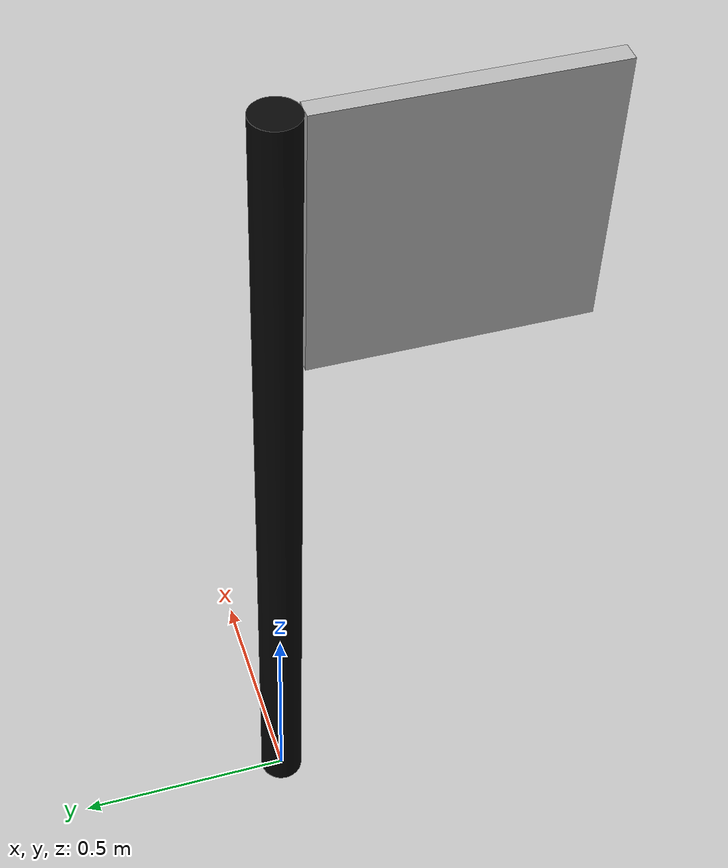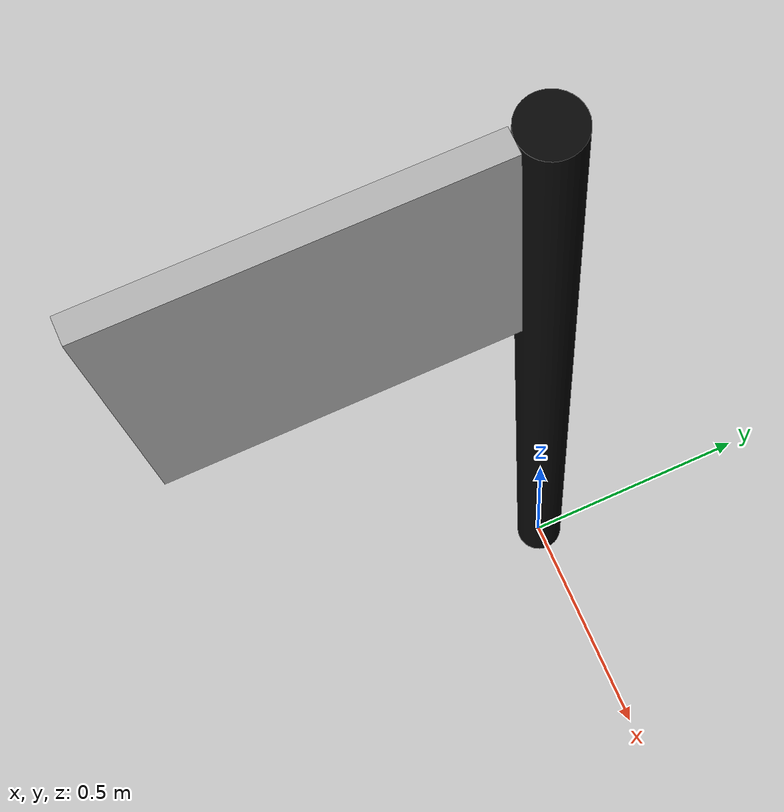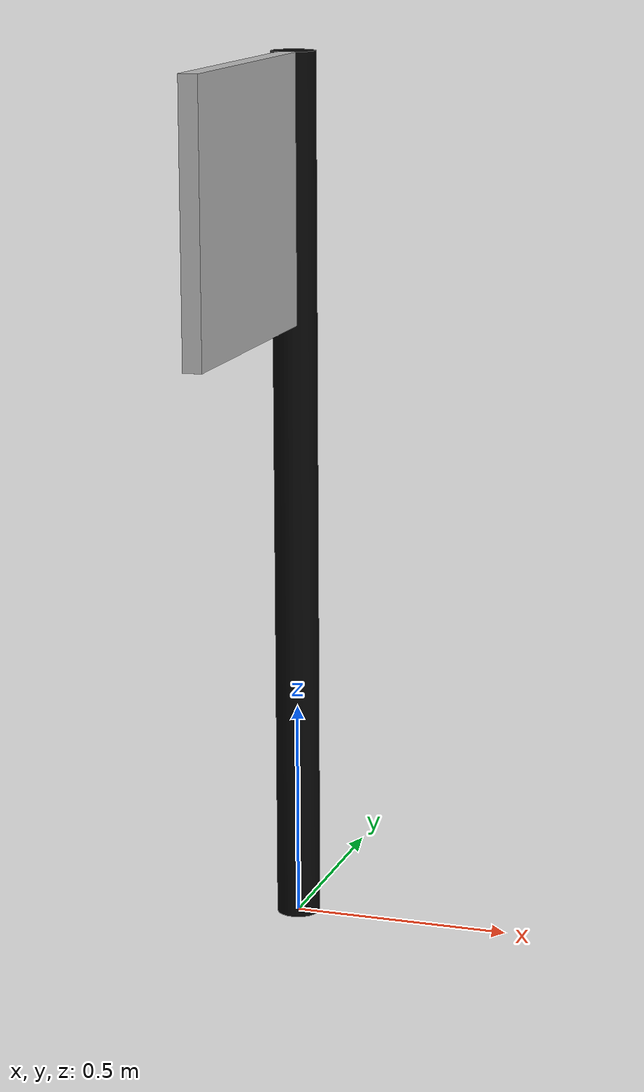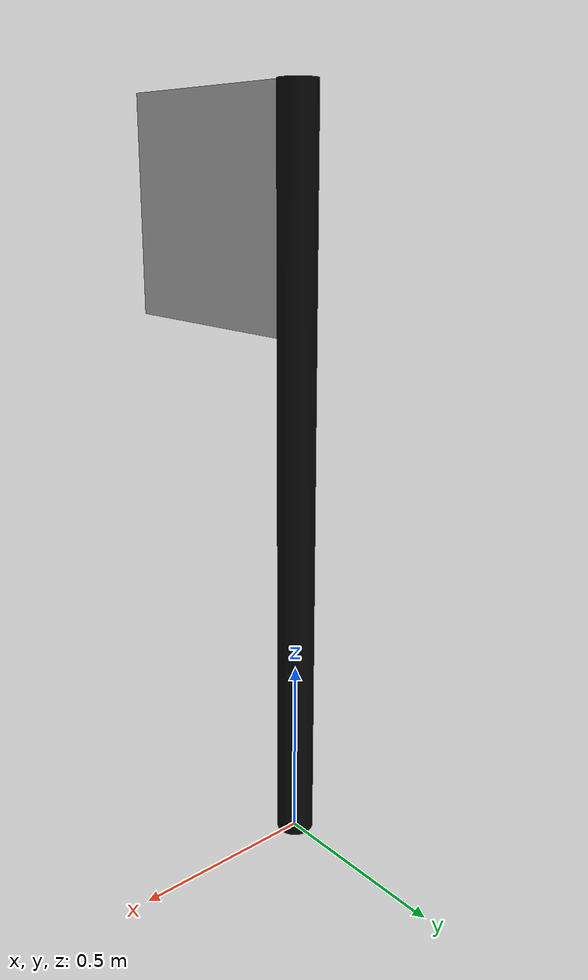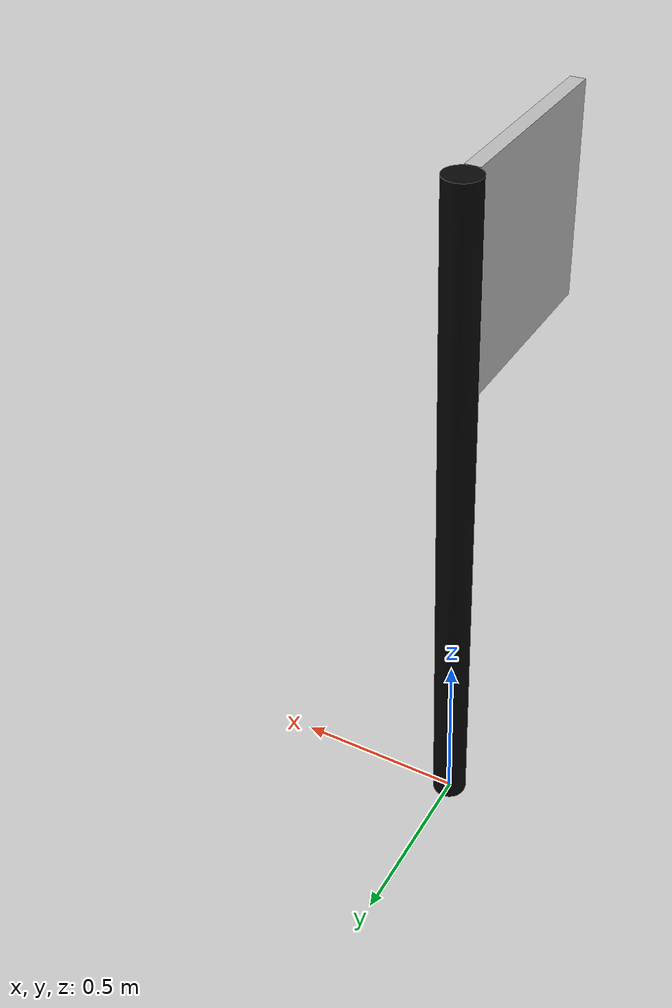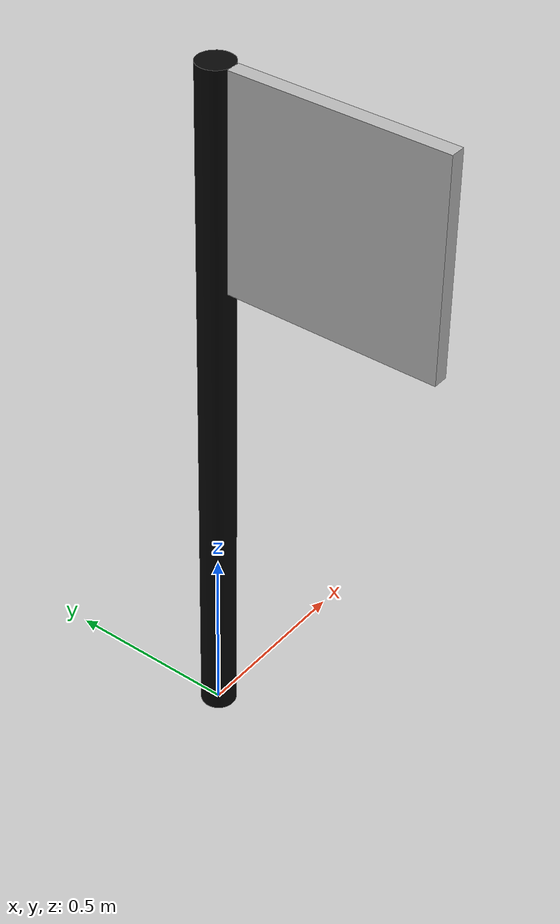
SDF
<?xml version="1.0" ?>
<sdf version="1.6">
  <model name="f11_flag">
    <pose>0 0 0 0 0 0</pose>
    <static>true</static>
    <link name="link">
      <visual name="visual">
        <geometry>
          <mesh>
            <uri>model://start_flag_f11/meshes/start_flag.dae</uri>
          </mesh>
        </geometry>
      </visual>
    </link>
  </model>
</sdf>
